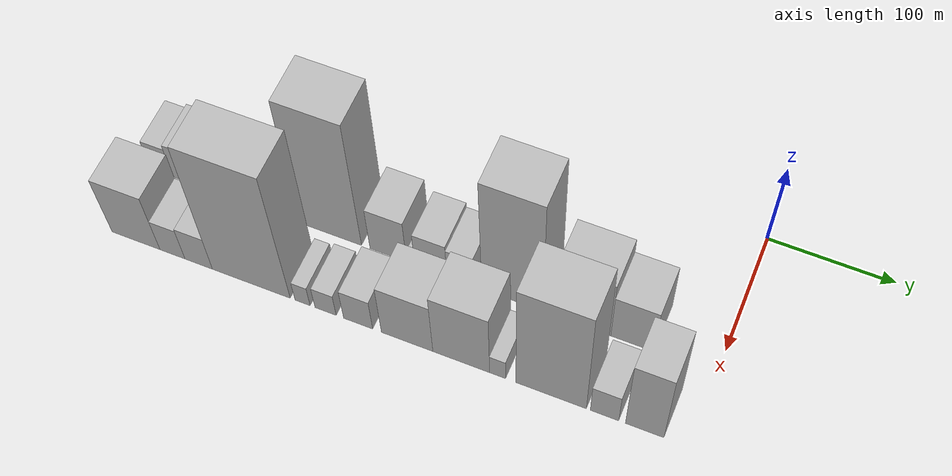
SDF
<sdf version="1.6">
 <world name="default">
  <model name="building_1">
   <static>1</static>
   <pose>100.0000 -450.2089 0 0.000000 0.000000 0.000000</pose>
   <link name="link">
    <pose>0 0 19.50 0 0 0</pose>
    <collision name="collision"><geometry><box><size>40.0000 19.5823 39.0000</size></box></geometry></collision>
    <visual name="visual">
     <cast_shadows>0</cast_shadows>
     <geometry><box><size>40.0000 19.5823 39.0000</size></box></geometry>
     <material>
      <script>
       <uri>model://HANNAS_wall/materials/scripts</uri>
       <uri>model://HANNAS_wall/materials/textures</uri>
       <name>vrc/HANNAS_wall</name>
      </script>
     </material>
    </visual>
   </link>
  </model>
  <model name="building_2">
   <static>1</static>
   <pose>100.0000 -427.1291 0 0.000000 0.000000 0.000000</pose>
   <link name="link">
    <pose>0 0 22.50 0 0 0</pose>
    <collision name="collision"><geometry><box><size>40.0000 26.5774 45.0000</size></box></geometry></collision>
    <visual name="visual">
     <cast_shadows>0</cast_shadows>
     <geometry><box><size>40.0000 26.5774 45.0000</size></box></geometry>
     <material>
      <script>
       <uri>model://HANNAS_wall/materials/scripts</uri>
       <uri>model://HANNAS_wall/materials/textures</uri>
       <name>vrc/HANNAS_wall</name>
      </script>
     </material>
    </visual>
   </link>
  </model>
  <model name="building_3">
   <static>1</static>
   <pose>100.0000 -400.4056 0 0.000000 0.000000 0.000000</pose>
   <link name="link">
    <pose>0 0 25.50 0 0 0</pose>
    <collision name="collision"><geometry><box><size>40.0000 26.8695 51.0000</size></box></geometry></collision>
    <visual name="visual">
     <cast_shadows>0</cast_shadows>
     <geometry><box><size>40.0000 26.8695 51.0000</size></box></geometry>
     <material>
      <script>
       <uri>model://HANNAS_wall/materials/scripts</uri>
       <uri>model://HANNAS_wall/materials/textures</uri>
       <name>vrc/HANNAS_wall</name>
      </script>
     </material>
    </visual>
   </link>
  </model>
  <model name="building_4">
   <static>1</static>
   <pose>100.0000 -383.9242 0 0.000000 0.000000 0.000000</pose>
   <link name="link">
    <pose>0 0 7.50 0 0 0</pose>
    <collision name="collision"><geometry><box><size>40.0000 6.0933 15.0000</size></box></geometry></collision>
    <visual name="visual">
     <cast_shadows>0</cast_shadows>
     <geometry><box><size>40.0000 6.0933 15.0000</size></box></geometry>
     <material>
      <script>
       <uri>model://HANNAS_wall/materials/scripts</uri>
       <uri>model://HANNAS_wall/materials/textures</uri>
       <name>vrc/HANNAS_wall</name>
      </script>
     </material>
    </visual>
   </link>
  </model>
  <model name="building_5">
   <static>1</static>
   <pose>100.0000 -376.5319 0 0.000000 0.000000 0.000000</pose>
   <link name="link">
    <pose>0 0 10.50 0 0 0</pose>
    <collision name="collision"><geometry><box><size>40.0000 8.6912 21.0000</size></box></geometry></collision>
    <visual name="visual">
     <cast_shadows>0</cast_shadows>
     <geometry><box><size>40.0000 8.6912 21.0000</size></box></geometry>
     <material>
      <script>
       <uri>model://HANNAS_wall/materials/scripts</uri>
       <uri>model://HANNAS_wall/materials/textures</uri>
       <name>vrc/HANNAS_wall</name>
      </script>
     </material>
    </visual>
   </link>
  </model>
  <model name="building_6">
   <static>1</static>
   <pose>100.0000 -368.5084 0 0.000000 0.000000 0.000000</pose>
   <link name="link">
    <pose>0 0 9.00 0 0 0</pose>
    <collision name="collision"><geometry><box><size>40.0000 7.3557 18.0000</size></box></geometry></collision>
    <visual name="visual">
     <cast_shadows>0</cast_shadows>
     <geometry><box><size>40.0000 7.3557 18.0000</size></box></geometry>
     <material>
      <script>
       <uri>model://HANNAS_wall/materials/scripts</uri>
       <uri>model://HANNAS_wall/materials/textures</uri>
       <name>vrc/HANNAS_wall</name>
      </script>
     </material>
    </visual>
   </link>
  </model>
  <model name="building_7">
   <static>1</static>
   <pose>100.0000 -357.0182 0 0.000000 0.000000 0.000000</pose>
   <link name="link">
    <pose>0 0 15.00 0 0 0</pose>
    <collision name="collision"><geometry><box><size>40.0000 15.6246 30.0000</size></box></geometry></collision>
    <visual name="visual">
     <cast_shadows>0</cast_shadows>
     <geometry><box><size>40.0000 15.6246 30.0000</size></box></geometry>
     <material>
      <script>
       <uri>model://HANNAS_wall/materials/scripts</uri>
       <uri>model://HANNAS_wall/materials/textures</uri>
       <name>vrc/HANNAS_wall</name>
      </script>
     </material>
    </visual>
   </link>
  </model>
  <model name="building_8">
   <static>1</static>
   <pose>100.0000 -343.0800 0 0.000000 0.000000 0.000000</pose>
   <link name="link">
    <pose>0 0 13.50 0 0 0</pose>
    <collision name="collision"><geometry><box><size>40.0000 12.2518 27.0000</size></box></geometry></collision>
    <visual name="visual">
     <cast_shadows>0</cast_shadows>
     <geometry><box><size>40.0000 12.2518 27.0000</size></box></geometry>
     <material>
      <script>
       <uri>model://HANNAS_wall/materials/scripts</uri>
       <uri>model://HANNAS_wall/materials/textures</uri>
       <name>vrc/HANNAS_wall</name>
      </script>
     </material>
    </visual>
   </link>
  </model>
  <model name="building_9">
   <static>1</static>
   <pose>100.0000 -306.8563 0 0.000000 0.000000 0.000000</pose>
   <link name="link">
    <pose>0 0 82.50 0 0 0</pose>
    <collision name="collision"><geometry><box><size>40.0000 52.1956 165.0000</size></box></geometry></collision>
    <visual name="visual">
     <cast_shadows>0</cast_shadows>
     <geometry><box><size>40.0000 52.1956 165.0000</size></box></geometry>
     <material>
      <script>
       <uri>model://HANNAS_wall/materials/scripts</uri>
       <uri>model://HANNAS_wall/materials/textures</uri>
       <name>vrc/HANNAS_wall</name>
      </script>
     </material>
    </visual>
   </link>
  </model>
  <model name="building_10">
   <static>1</static>
   <pose>100.0000 -258.7649 0 0.000000 0.000000 0.000000</pose>
   <link name="link">
    <pose>0 0 28.50 0 0 0</pose>
    <collision name="collision"><geometry><box><size>40.0000 29.9873 57.0000</size></box></geometry></collision>
    <visual name="visual">
     <cast_shadows>0</cast_shadows>
     <geometry><box><size>40.0000 29.9873 57.0000</size></box></geometry>
     <material>
      <script>
       <uri>model://HANNAS_wall/materials/scripts</uri>
       <uri>model://HANNAS_wall/materials/textures</uri>
       <name>vrc/HANNAS_wall</name>
      </script>
     </material>
    </visual>
   </link>
  </model>
  <model name="building_11">
   <static>1</static>
   <pose>100.0000 -240.4747 0 0.000000 0.000000 0.000000</pose>
   <link name="link">
    <pose>0 0 7.50 0 0 0</pose>
    <collision name="collision"><geometry><box><size>40.0000 6.5930 15.0000</size></box></geometry></collision>
    <visual name="visual">
     <cast_shadows>0</cast_shadows>
     <geometry><box><size>40.0000 6.5930 15.0000</size></box></geometry>
     <material>
      <script>
       <uri>model://HANNAS_wall/materials/scripts</uri>
       <uri>model://HANNAS_wall/materials/textures</uri>
       <name>vrc/HANNAS_wall</name>
      </script>
     </material>
    </visual>
   </link>
  </model>
  <model name="building_12">
   <static>1</static>
   <pose>100.0000 -224.1074 0 0.000000 0.000000 0.000000</pose>
   <link name="link">
    <pose>0 0 22.50 0 0 0</pose>
    <collision name="collision"><geometry><box><size>40.0000 26.1418 45.0000</size></box></geometry></collision>
    <visual name="visual">
     <cast_shadows>0</cast_shadows>
     <geometry><box><size>40.0000 26.1418 45.0000</size></box></geometry>
     <material>
      <script>
       <uri>model://HANNAS_wall/materials/scripts</uri>
       <uri>model://HANNAS_wall/materials/textures</uri>
       <name>vrc/HANNAS_wall</name>
      </script>
     </material>
    </visual>
   </link>
  </model>
  <model name="building_13">
   <static>1</static>
   <pose>100.0000 -200.5109 0 0.000000 0.000000 0.000000</pose>
   <link name="link">
    <pose>0 0 19.50 0 0 0</pose>
    <collision name="collision"><geometry><box><size>40.0000 21.0513 39.0000</size></box></geometry></collision>
    <visual name="visual">
     <cast_shadows>0</cast_shadows>
     <geometry><box><size>40.0000 21.0513 39.0000</size></box></geometry>
     <material>
      <script>
       <uri>model://HANNAS_wall/materials/scripts</uri>
       <uri>model://HANNAS_wall/materials/textures</uri>
       <name>vrc/HANNAS_wall</name>
      </script>
     </material>
    </visual>
   </link>
  </model>
  <model name="building_14">
   <static>1</static>
   <pose>100.0000 -158.6587 0 0.000000 0.000000 0.000000</pose>
   <link name="link">
    <pose>0 0 76.50 0 0 0</pose>
    <collision name="collision"><geometry><box><size>40.0000 48.6531 153.0000</size></box></geometry></collision>
    <visual name="visual">
     <cast_shadows>0</cast_shadows>
     <geometry><box><size>40.0000 48.6531 153.0000</size></box></geometry>
     <material>
      <script>
       <uri>model://HANNAS_wall/materials/scripts</uri>
       <uri>model://HANNAS_wall/materials/textures</uri>
       <name>vrc/HANNAS_wall</name>
      </script>
     </material>
    </visual>
   </link>
  </model>
  <model name="building_15">
   <static>1</static>
   <pose>100.0000 -103.3141 0 0.000000 0.000000 0.000000</pose>
   <link name="link">
    <pose>0 0 39.00 0 0 0</pose>
    <collision name="collision"><geometry><box><size>40.0000 44.0360 78.0000</size></box></geometry></collision>
    <visual name="visual">
     <cast_shadows>0</cast_shadows>
     <geometry><box><size>40.0000 44.0360 78.0000</size></box></geometry>
     <material>
      <script>
       <uri>model://HANNAS_wall/materials/scripts</uri>
       <uri>model://HANNAS_wall/materials/textures</uri>
       <name>vrc/HANNAS_wall</name>
      </script>
     </material>
    </visual>
   </link>
  </model>
  <model name="building_16">
   <static>1</static>
   <pose>100.0000 -64.5007 0 0.000000 0.000000 0.000000</pose>
   <link name="link">
    <pose>0 0 30.00 0 0 0</pose>
    <collision name="collision"><geometry><box><size>40.0000 33.5907 60.0000</size></box></geometry></collision>
    <visual name="visual">
     <cast_shadows>0</cast_shadows>
     <geometry><box><size>40.0000 33.5907 60.0000</size></box></geometry>
     <material>
      <script>
       <uri>model://HANNAS_wall/materials/scripts</uri>
       <uri>model://HANNAS_wall/materials/textures</uri>
       <name>vrc/HANNAS_wall</name>
      </script>
     </material>
    </visual>
   </link>
  </model>
  <model name="building_30">
   <static>1</static>
   <pose>160.0000 -439.6438 0 0.000000 0.000000 0.000000</pose>
   <link name="link">
    <pose>0 0 37.50 0 0 0</pose>
    <collision name="collision"><geometry><box><size>40.0000 40.7124 75.0000</size></box></geometry></collision>
    <visual name="visual">
     <cast_shadows>0</cast_shadows>
     <geometry><box><size>40.0000 40.7124 75.0000</size></box></geometry>
     <material>
      <script>
       <uri>model://HANNAS_wall/materials/scripts</uri>
       <uri>model://HANNAS_wall/materials/textures</uri>
       <name>vrc/HANNAS_wall</name>
      </script>
     </material>
    </visual>
   </link>
  </model>
  <model name="building_31">
   <static>1</static>
   <pose>160.0000 -408.7538 0 0.000000 0.000000 0.000000</pose>
   <link name="link">
    <pose>0 0 21.00 0 0 0</pose>
    <collision name="collision"><geometry><box><size>40.0000 21.0678 42.0000</size></box></geometry></collision>
    <visual name="visual">
     <cast_shadows>0</cast_shadows>
     <geometry><box><size>40.0000 21.0678 42.0000</size></box></geometry>
     <material>
      <script>
       <uri>model://HANNAS_wall/materials/scripts</uri>
       <uri>model://HANNAS_wall/materials/textures</uri>
       <name>vrc/HANNAS_wall</name>
      </script>
     </material>
    </visual>
   </link>
  </model>
  <model name="building_32">
   <static>1</static>
   <pose>160.0000 -386.7330 0 0.000000 0.000000 0.000000</pose>
   <link name="link">
    <pose>0 0 22.50 0 0 0</pose>
    <collision name="collision"><geometry><box><size>40.0000 22.9737 45.0000</size></box></geometry></collision>
    <visual name="visual">
     <cast_shadows>0</cast_shadows>
     <geometry><box><size>40.0000 22.9737 45.0000</size></box></geometry>
     <material>
      <script>
       <uri>model://HANNAS_wall/materials/scripts</uri>
       <uri>model://HANNAS_wall/materials/textures</uri>
       <name>vrc/HANNAS_wall</name>
      </script>
     </material>
    </visual>
   </link>
  </model>
  <model name="building_33">
   <static>1</static>
   <pose>160.0000 -343.1132 0 0.000000 0.000000 0.000000</pose>
   <link name="link">
    <pose>0 0 85.50 0 0 0</pose>
    <collision name="collision"><geometry><box><size>40.0000 64.2659 171.0000</size></box></geometry></collision>
    <visual name="visual">
     <cast_shadows>0</cast_shadows>
     <geometry><box><size>40.0000 64.2659 171.0000</size></box></geometry>
     <material>
      <script>
       <uri>model://HANNAS_wall/materials/scripts</uri>
       <uri>model://HANNAS_wall/materials/textures</uri>
       <name>vrc/HANNAS_wall</name>
      </script>
     </material>
    </visual>
   </link>
  </model>
  <model name="building_34">
   <static>1</static>
   <pose>160.0000 -300.8660 0 0.000000 0.000000 0.000000</pose>
   <link name="link">
    <pose>0 0 13.50 0 0 0</pose>
    <collision name="collision"><geometry><box><size>40.0000 12.2286 27.0000</size></box></geometry></collision>
    <visual name="visual">
     <cast_shadows>0</cast_shadows>
     <geometry><box><size>40.0000 12.2286 27.0000</size></box></geometry>
     <material>
      <script>
       <uri>model://HANNAS_wall/materials/scripts</uri>
       <uri>model://HANNAS_wall/materials/textures</uri>
       <name>vrc/HANNAS_wall</name>
      </script>
     </material>
    </visual>
   </link>
  </model>
  <model name="building_35">
   <static>1</static>
   <pose>160.0000 -282.1672 0 0.000000 0.000000 0.000000</pose>
   <link name="link">
    <pose>0 0 15.00 0 0 0</pose>
    <collision name="collision"><geometry><box><size>40.0000 17.1689 30.0000</size></box></geometry></collision>
    <visual name="visual">
     <cast_shadows>0</cast_shadows>
     <geometry><box><size>40.0000 17.1689 30.0000</size></box></geometry>
     <material>
      <script>
       <uri>model://HANNAS_wall/materials/scripts</uri>
       <uri>model://HANNAS_wall/materials/textures</uri>
       <name>vrc/HANNAS_wall</name>
      </script>
     </material>
    </visual>
   </link>
  </model>
  <model name="building_36">
   <static>1</static>
   <pose>160.0000 -255.9202 0 0.000000 0.000000 0.000000</pose>
   <link name="link">
    <pose>0 0 21.00 0 0 0</pose>
    <collision name="collision"><geometry><box><size>40.0000 23.3251 42.0000</size></box></geometry></collision>
    <visual name="visual">
     <cast_shadows>0</cast_shadows>
     <geometry><box><size>40.0000 23.3251 42.0000</size></box></geometry>
     <material>
      <script>
       <uri>model://HANNAS_wall/materials/scripts</uri>
       <uri>model://HANNAS_wall/materials/textures</uri>
       <name>vrc/HANNAS_wall</name>
      </script>
     </material>
    </visual>
   </link>
  </model>
  <model name="building_37">
   <static>1</static>
   <pose>160.0000 -216.8334 0 0.000000 0.000000 0.000000</pose>
   <link name="link">
    <pose>0 0 34.50 0 0 0</pose>
    <collision name="collision"><geometry><box><size>40.0000 40.8485 69.0000</size></box></geometry></collision>
    <visual name="visual">
     <cast_shadows>0</cast_shadows>
     <geometry><box><size>40.0000 40.8485 69.0000</size></box></geometry>
     <material>
      <script>
       <uri>model://HANNAS_wall/materials/scripts</uri>
       <uri>model://HANNAS_wall/materials/textures</uri>
       <name>vrc/HANNAS_wall</name>
      </script>
     </material>
    </visual>
   </link>
  </model>
  <model name="building_38">
   <static>1</static>
   <pose>160.0000 -174.1545 0 0.000000 0.000000 0.000000</pose>
   <link name="link">
    <pose>0 0 42.00 0 0 0</pose>
    <collision name="collision"><geometry><box><size>40.0000 44.5092 84.0000</size></box></geometry></collision>
    <visual name="visual">
     <cast_shadows>0</cast_shadows>
     <geometry><box><size>40.0000 44.5092 84.0000</size></box></geometry>
     <material>
      <script>
       <uri>model://HANNAS_wall/materials/scripts</uri>
       <uri>model://HANNAS_wall/materials/textures</uri>
       <name>vrc/HANNAS_wall</name>
      </script>
     </material>
    </visual>
   </link>
  </model>
  <model name="building_39">
   <static>1</static>
   <pose>160.0000 -145.7039 0 0.000000 0.000000 0.000000</pose>
   <link name="link">
    <pose>0 0 13.50 0 0 0</pose>
    <collision name="collision"><geometry><box><size>40.0000 12.3920 27.0000</size></box></geometry></collision>
    <visual name="visual">
     <cast_shadows>0</cast_shadows>
     <geometry><box><size>40.0000 12.3920 27.0000</size></box></geometry>
     <material>
      <script>
       <uri>model://HANNAS_wall/materials/scripts</uri>
       <uri>model://HANNAS_wall/materials/textures</uri>
       <name>vrc/HANNAS_wall</name>
      </script>
     </material>
    </visual>
   </link>
  </model>
  <model name="building_40">
   <static>1</static>
   <pose>160.0000 -104.5257 0 0.000000 0.000000 0.000000</pose>
   <link name="link">
    <pose>0 0 72.00 0 0 0</pose>
    <collision name="collision"><geometry><box><size>40.0000 53.9645 144.0000</size></box></geometry></collision>
    <visual name="visual">
     <cast_shadows>0</cast_shadows>
     <geometry><box><size>40.0000 53.9645 144.0000</size></box></geometry>
     <material>
      <script>
       <uri>model://HANNAS_wall/materials/scripts</uri>
       <uri>model://HANNAS_wall/materials/textures</uri>
       <name>vrc/HANNAS_wall</name>
      </script>
     </material>
    </visual>
   </link>
  </model>
  <model name="building_41">
   <static>1</static>
   <pose>160.0000 -63.8066 0 0.000000 0.000000 0.000000</pose>
   <link name="link">
    <pose>0 0 19.50 0 0 0</pose>
    <collision name="collision"><geometry><box><size>40.0000 21.4738 39.0000</size></box></geometry></collision>
    <visual name="visual">
     <cast_shadows>0</cast_shadows>
     <geometry><box><size>40.0000 21.4738 39.0000</size></box></geometry>
     <material>
      <script>
       <uri>model://HANNAS_wall/materials/scripts</uri>
       <uri>model://HANNAS_wall/materials/textures</uri>
       <name>vrc/HANNAS_wall</name>
      </script>
     </material>
    </visual>
   </link>
  </model>
  <model name="building_42">
   <static>1</static>
   <pose>160.0000 -33.6323 0 0.000000 0.000000 0.000000</pose>
   <link name="link">
    <pose>0 0 48.00 0 0 0</pose>
    <collision name="collision"><geometry><box><size>40.0000 28.8748 96.0000</size></box></geometry></collision>
    <visual name="visual">
     <cast_shadows>0</cast_shadows>
     <geometry><box><size>40.0000 28.8748 96.0000</size></box></geometry>
     <material>
      <script>
       <uri>model://HANNAS_wall/materials/scripts</uri>
       <uri>model://HANNAS_wall/materials/textures</uri>
       <name>vrc/HANNAS_wall</name>
      </script>
     </material>
    </visual>
   </link>
  </model>
 </world>
</sdf>
